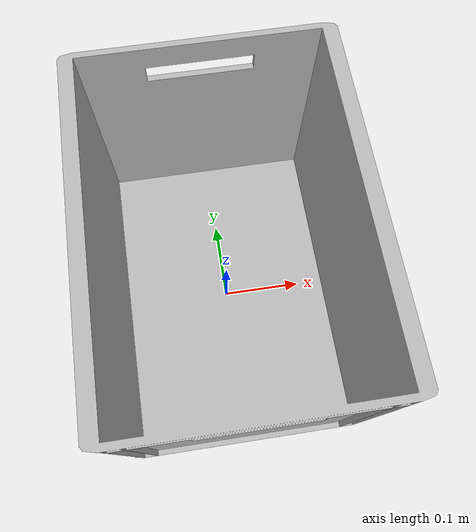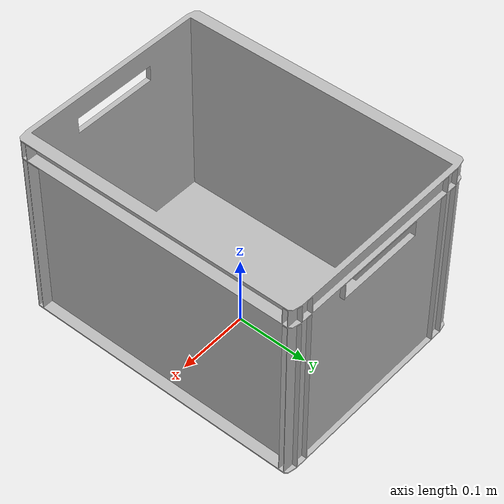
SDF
<?xml version="1.0"?>
<sdf version="1.4">

  <model name="European Container Type B">

    <static>false</static>

    <link name="container_structure">

<pose>0 0 0 0 0 0</pose>

      <collision name="container_collision">
        <geometry>
                <box>
                  <size>.30 .40 .30</size>
                </box>
        </geometry>
      </collision>

      <visual name="container_visual">
        <geometry>
          <mesh>
            <uri>model://eurocontainer_B/meshes/EuroContainer_B_metric.dae</uri>
          </mesh>
        </geometry>

      </visual>

    </link>

  </model>
</sdf>
